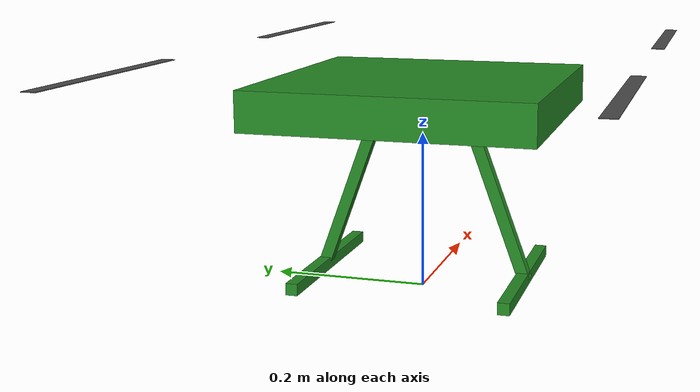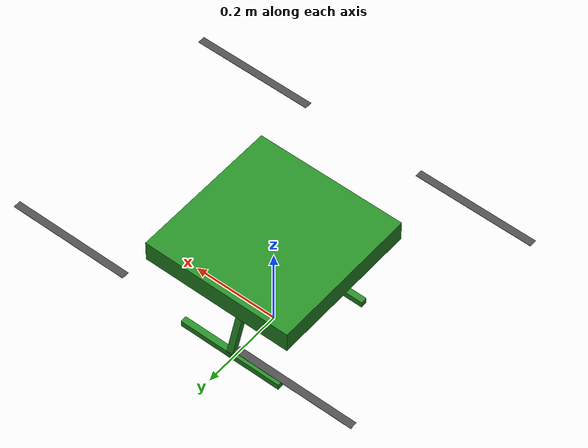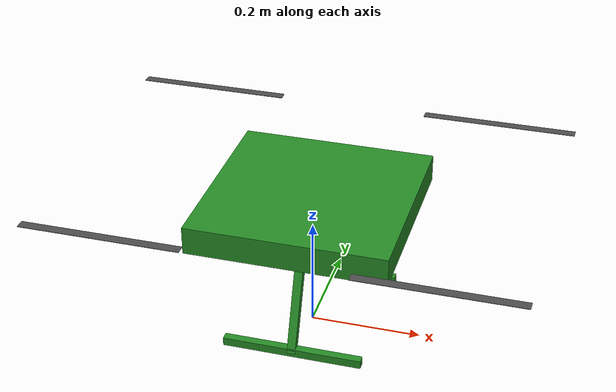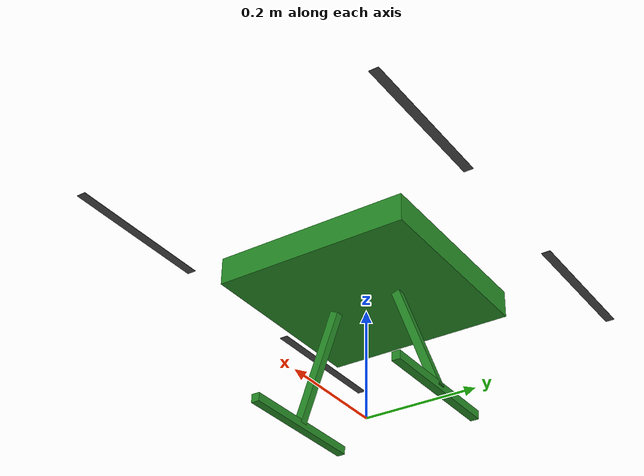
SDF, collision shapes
<?xml version="1.0" encoding="UTF-8"?>
<sdf version='1.9'>
  <model name='x500_base'>
    <pose>0 0 .24 0 0 0</pose>
    <self_collide>false</self_collide>
    <static>false</static>
    <link name="base_link">
      <inertial>
        <mass>2.0</mass>
        <inertia>
          <ixx>0.02166666666666667</ixx>
          <ixy>0</ixy>
          <ixz>0</ixz>
          <iyy>0.02166666666666667</iyy>
          <iyz>0</iyz>
          <izz>0.04000000000000001</izz>
        </inertia>
      </inertial>
      <gravity>true</gravity>
      <velocity_decay />

      <!-- ===== ARMS 커스텀 동체 (SolidWorks STL) ===== -->
      <!-- scale 0.001: mm→m / roll 1.5708: STL은 Y축이 위 → Z축이 위로 -->
      <visual name="base_link_visual">
        <pose>0 0 0.1 -1.5708 0 0.7854</pose>
        <geometry>
          <mesh>
            <scale>0.003 0.003 0.003</scale>
            <uri>model://x500_base/meshes/ver_ksh_assembly.stl</uri>
          </mesh>
        </geometry>
        <material>
          <ambient>0.1 0.35 0.1 1</ambient>
          <diffuse>0.15 0.55 0.15 1</diffuse>
          <specular>0.2 0.3 0.2 1</specular>
        </material>
      </visual>

      <!-- NXP 로고 평면들은 제거 (커스텀 동체엔 불필요) -->

      <collision name="base_link_collision_0">
        <pose>0 0 .007 0 0 0</pose>
        <geometry>
          <box>
            <size>0.35355339059327373 0.35355339059327373 0.05</size>
          </box>
        </geometry>
        <surface>
          <contact><ode><min_depth>0.001</min_depth><max_vel>0</max_vel></ode></contact>
          <friction><ode /></friction>
        </surface>
      </collision>
      <collision name="base_link_collision_1">
        <pose>0 -0.098 -.123 -0.35 0 0</pose>
        <geometry><box><size>0.015 0.015 0.21</size></box></geometry>
        <surface><contact><ode><min_depth>0.001</min_depth><max_vel>0</max_vel></ode></contact><friction><ode /></friction></surface>
      </collision>
      <collision name="base_link_collision_2">
        <pose>0 0.098 -.123 0.35 0 0</pose>
        <geometry><box><size>0.015 0.015 0.21</size></box></geometry>
        <surface><contact><ode><min_depth>0.001</min_depth><max_vel>0</max_vel></ode></contact><friction><ode /></friction></surface>
      </collision>
      <collision name="base_link_collision_3">
        <pose>0 -0.132 -.2195 0 0 0</pose>
        <geometry><box><size>0.25 0.015 0.015</size></box></geometry>
        <surface><contact><ode><min_depth>0.001</min_depth><max_vel>0</max_vel></ode></contact><friction><ode /></friction></surface>
      </collision>
      <collision name="base_link_collision_4">
        <pose>0 0.132 -.2195 0 0 0</pose>
        <geometry><box><size>0.25 0.015 0.015</size></box></geometry>
        <surface><contact><ode><min_depth>0.001</min_depth><max_vel>0</max_vel></ode></contact><friction><ode /></friction></surface>
      </collision>

      <sensor name="air_pressure_sensor" type="air_pressure">
        <gz_frame_id>base_link</gz_frame_id>
        <always_on>1</always_on>
        <update_rate>50</update_rate>
        <air_pressure><pressure><noise type="gaussian"><mean>0</mean><stddev>3</stddev></noise></pressure></air_pressure>
      </sensor>
      <sensor name="magnetometer_sensor" type="magnetometer">
        <gz_frame_id>base_link</gz_frame_id>
        <always_on>1</always_on>
        <update_rate>100</update_rate>
        <magnetometer>
          <x><noise type="gaussian"><stddev>0.0001</stddev></noise></x>
          <y><noise type="gaussian"><stddev>0.0001</stddev></noise></y>
          <z><noise type="gaussian"><stddev>0.0001</stddev></noise></z>
        </magnetometer>
      </sensor>
      <sensor name="imu_sensor" type="imu">
        <gz_frame_id>base_link</gz_frame_id>
        <always_on>1</always_on>
        <update_rate>250</update_rate>
        <imu>
          <angular_velocity>
            <x><noise type="gaussian"><mean>0.0</mean><stddev>0.0008726646</stddev></noise></x>
            <y><noise type="gaussian"><mean>0.0</mean><stddev>0.0008726646</stddev></noise></y>
            <z><noise type="gaussian"><mean>0.0</mean><stddev>0.0008726646</stddev></noise></z>
          </angular_velocity>
          <linear_acceleration>
            <x><noise type="gaussian"><mean>0.0</mean><stddev>0.00637</stddev></noise></x>
            <y><noise type="gaussian"><mean>0.0</mean><stddev>0.00637</stddev></noise></y>
            <z><noise type="gaussian"><mean>0.0</mean><stddev>0.00686</stddev></noise></z>
          </linear_acceleration>
        </imu>
      </sensor>
      <sensor name="navsat_sensor" type="navsat">
        <gz_frame_id>base_link</gz_frame_id>
        <always_on>1</always_on>
        <update_rate>30</update_rate>
      </sensor>
    </link>

    <!-- ===== 프로펠러 4개 (원본 그대로, 회전 유지) ===== -->
    <link name="rotor_0">
      <gravity>true</gravity><self_collide>false</self_collide><velocity_decay />
      <pose>0.278 -0.278 0.06 0 0 0</pose>
      <inertial><mass>0.016076923076923075</mass><inertia><ixx>3.8464910483993325e-07</ixx><iyy>2.6115851691700804e-05</iyy><izz>2.649858234714004e-05</izz></inertia></inertial>
      <visual name="rotor_0_visual">
        <pose>-0.022 -0.14638461538461536 -0.016 0 0 0</pose>
        <geometry><mesh><scale>0.8461538461538461 0.8461538461538461 0.8461538461538461</scale><uri>model://x500_base/meshes/1345_prop_ccw.stl</uri></mesh></geometry>
        <material><script><name>Gazebo/DarkGrey</name><uri>file://media/materials/scripts/gazebo.material</uri></script></material>
      </visual>
      <visual name="rotor_0_visual_motor_bell">
        <pose>0 0 -.032 0 0 0</pose>
        <geometry><mesh><scale>1 1 1</scale><uri>model://x500_base/meshes/5010Bell.dae</uri></mesh></geometry>
      </visual>
      <collision name="rotor_0_collision"><pose>0 0 0 0 0 0 </pose><geometry><box><size>0.2792307692307692 0.016923076923076923 0.0008461538461538462</size></box></geometry><surface><contact><ode><min_depth>0.001</min_depth><max_vel>0</max_vel></ode></contact><friction><ode /></friction></surface></collision>
    </link>
    <joint name="rotor_0_joint" type="revolute"><parent>base_link</parent><child>rotor_0</child><axis><xyz>0 0 1</xyz><limit><lower>-1e+16</lower><upper>1e+16</upper></limit><dynamics><spring_reference>0</spring_reference><spring_stiffness>0</spring_stiffness></dynamics></axis></joint>

    <link name="rotor_1">
      <gravity>true</gravity><self_collide>false</self_collide><velocity_decay />
      <pose>-0.278 0.278 0.06 0 0 0</pose>
      <inertial><mass>0.016076923076923075</mass><inertia><ixx>3.8464910483993325e-07</ixx><iyy>2.6115851691700804e-05</iyy><izz>2.649858234714004e-05</izz></inertia></inertial>
      <visual name="rotor_1_visual">
        <pose>-0.022 -0.14638461538461536 -0.016 0 0 0</pose>
        <geometry><mesh><scale>0.8461538461538461 0.8461538461538461 0.8461538461538461</scale><uri>model://x500_base/meshes/1345_prop_ccw.stl</uri></mesh></geometry>
        <material><script><name>Gazebo/DarkGrey</name><uri>file://media/materials/scripts/gazebo.material</uri></script></material>
      </visual>
      <visual name="rotor_1_visual_motor_top"><pose>0 0 -.032 0 0 0</pose><geometry><mesh><scale>1 1 1</scale><uri>model://x500_base/meshes/5010Bell.dae</uri></mesh></geometry></visual>
      <collision name="rotor_1_collision"><pose>0 0 0 0 0 0 </pose><geometry><box><size>0.2792307692307692 0.016923076923076923 0.0008461538461538462</size></box></geometry><surface><contact><ode><min_depth>0.001</min_depth><max_vel>0</max_vel></ode></contact><friction><ode /></friction></surface></collision>
    </link>
    <joint name="rotor_1_joint" type="revolute"><parent>base_link</parent><child>rotor_1</child><axis><xyz>0 0 1</xyz><limit><lower>-1e+16</lower><upper>1e+16</upper></limit><dynamics><spring_reference>0</spring_reference><spring_stiffness>0</spring_stiffness></dynamics></axis></joint>

    <link name="rotor_2">
      <gravity>true</gravity><self_collide>false</self_collide><velocity_decay />
      <pose>0.278 0.278 0.06 0 0 0</pose>
      <inertial><mass>0.016076923076923075</mass><inertia><ixx>3.8464910483993325e-07</ixx><iyy>2.6115851691700804e-05</iyy><izz>2.649858234714004e-05</izz></inertia></inertial>
      <visual name="rotor_2_visual">
        <pose>-0.022 -0.14638461538461536 -0.016 0 0 0</pose>
        <geometry><mesh><scale>0.8461538461538461 0.8461538461538461 0.8461538461538461</scale><uri>model://x500_base/meshes/1345_prop_cw.stl</uri></mesh></geometry>
        <material><script><name>Gazebo/DarkGrey</name><uri>file://media/materials/scripts/gazebo.material</uri></script></material>
      </visual>
      <visual name="rotor_2_visual_motor_top"><pose>0 0 -.032 0 0 0</pose><geometry><mesh><scale>1 1 1</scale><uri>model://x500_base/meshes/5010Bell.dae</uri></mesh></geometry></visual>
      <collision name="rotor_2_collision"><pose>0 0 0 0 0 0 </pose><geometry><box><size>0.2792307692307692 0.016923076923076923 0.0008461538461538462</size></box></geometry><surface><contact><ode><min_depth>0.001</min_depth><max_vel>0</max_vel></ode></contact><friction><ode /></friction></surface></collision>
    </link>
    <joint name="rotor_2_joint" type="revolute"><parent>base_link</parent><child>rotor_2</child><axis><xyz>0 0 1</xyz><limit><lower>-1e+16</lower><upper>1e+16</upper></limit><dynamics><spring_reference>0</spring_reference><spring_stiffness>0</spring_stiffness></dynamics></axis></joint>

    <link name="rotor_3">
      <gravity>true</gravity><self_collide>false</self_collide><velocity_decay />
      <pose>-0.278 -0.278 0.06 0 0 0</pose>
      <inertial><mass>0.016076923076923075</mass><inertia><ixx>3.8464910483993325e-07</ixx><iyy>2.6115851691700804e-05</iyy><izz>2.649858234714004e-05</izz></inertia></inertial>
      <visual name="rotor_3_visual">
        <pose>-0.022 -0.14638461538461536 -0.016 0 0 0</pose>
        <geometry><mesh><scale>0.8461538461538461 0.8461538461538461 0.8461538461538461</scale><uri>model://x500_base/meshes/1345_prop_cw.stl</uri></mesh></geometry>
        <material><script><name>Gazebo/DarkGrey</name><uri>file://media/materials/scripts/gazebo.material</uri></script></material>
      </visual>
      <visual name="rotor_3_visual_motor_top"><pose>0 0 -.032 0 0 0</pose><geometry><mesh><scale>1 1 1</scale><uri>model://x500_base/meshes/5010Bell.dae</uri></mesh></geometry></visual>
      <collision name="rotor_3_collision"><pose>0 0 0 0 0 0 </pose><geometry><box><size>0.2792307692307692 0.016923076923076923 0.0008461538461538462</size></box></geometry><surface><contact><ode><min_depth>0.001</min_depth><max_vel>0</max_vel></ode></contact><friction><ode /></friction></surface></collision>
    </link>
    <joint name="rotor_3_joint" type="revolute"><parent>base_link</parent><child>rotor_3</child><axis><xyz>0 0 1</xyz><limit><lower>-1e+16</lower><upper>1e+16</upper></limit><dynamics><spring_reference>0</spring_reference><spring_stiffness>0</spring_stiffness></dynamics></axis></joint>
  </model>
</sdf>
